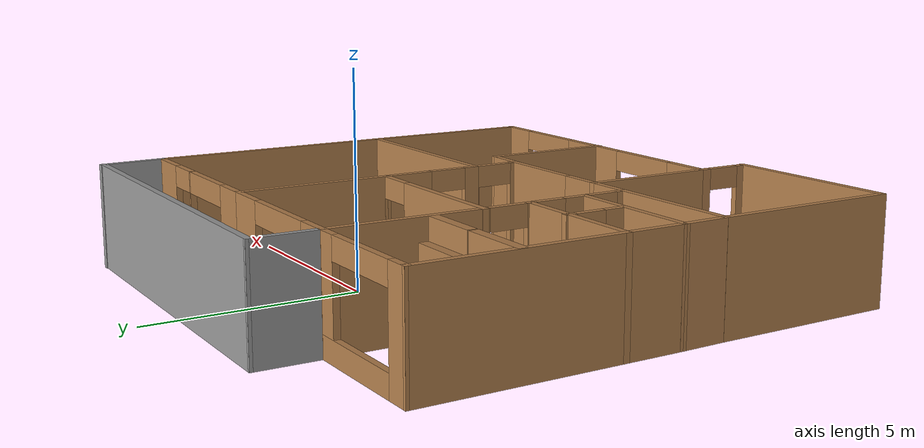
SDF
<?xml version='1.0'?>
<sdf version='1.7'>
  <model name='company_building'>
    <pose>-0.864954 -2.36193 0 0 -0 0</pose>
    <link name='Stairs_1'>
      <visual name='Stairs_1_Visual_0'>
        <pose>-3.6675 3.53186 0.25 0 -0 0</pose>
        <geometry>
          <box>
            <size>1.4781 0.226452 0.5</size>
          </box>
        </geometry>
        <material>
          <script>
            <uri>file://media/materials/scripts/gazebo.material</uri>
            <name>Gazebo/Wood</name>
          </script>
          <ambient>1 1 1 1</ambient>
        </material>
        <meta>
          <layer>0</layer>
        </meta>
      </visual>
      <collision name='Stairs_1_Collision_0'>
        <geometry>
          <box>
            <size>1.4781 0.226452 0.5</size>
          </box>
        </geometry>
        <pose>-3.6675 3.53186 0.25 0 -0 0</pose>
      </collision>
      <visual name='Stairs_1_Visual_1'>
        <pose>-3.6675 3.3054 0.75 0 -0 0</pose>
        <geometry>
          <box>
            <size>1.4781 0.226452 0.5</size>
          </box>
        </geometry>
        <material>
          <script>
            <uri>file://media/materials/scripts/gazebo.material</uri>
            <name>Gazebo/Wood</name>
          </script>
          <ambient>1 1 1 1</ambient>
        </material>
        <meta>
          <layer>0</layer>
        </meta>
      </visual>
      <collision name='Stairs_1_Collision_1'>
        <geometry>
          <box>
            <size>1.4781 0.226452 0.5</size>
          </box>
        </geometry>
        <pose>-3.6675 3.3054 0.75 0 -0 0</pose>
      </collision>
      <visual name='Stairs_1_Visual_2'>
        <pose>-3.6675 3.07895 1.25 0 -0 0</pose>
        <geometry>
          <box>
            <size>1.4781 0.226452 0.5</size>
          </box>
        </geometry>
        <material>
          <script>
            <uri>file://media/materials/scripts/gazebo.material</uri>
            <name>Gazebo/Wood</name>
          </script>
          <ambient>1 1 1 1</ambient>
        </material>
        <meta>
          <layer>0</layer>
        </meta>
      </visual>
      <collision name='Stairs_1_Collision_2'>
        <geometry>
          <box>
            <size>1.4781 0.226452 0.5</size>
          </box>
        </geometry>
        <pose>-3.6675 3.07895 1.25 0 -0 0</pose>
      </collision>
      <visual name='Stairs_1_Visual_3'>
        <pose>-3.6675 2.8525 1.75 0 -0 0</pose>
        <geometry>
          <box>
            <size>1.4781 0.226452 0.5</size>
          </box>
        </geometry>
        <material>
          <script>
            <uri>file://media/materials/scripts/gazebo.material</uri>
            <name>Gazebo/Wood</name>
          </script>
          <ambient>1 1 1 1</ambient>
        </material>
        <meta>
          <layer>0</layer>
        </meta>
      </visual>
      <collision name='Stairs_1_Collision_3'>
        <geometry>
          <box>
            <size>1.4781 0.226452 0.5</size>
          </box>
        </geometry>
        <pose>-3.6675 2.8525 1.75 0 -0 0</pose>
      </collision>
      <visual name='Stairs_1_Visual_4'>
        <pose>-3.6675 2.62605 2.25 0 -0 0</pose>
        <geometry>
          <box>
            <size>1.4781 0.226452 0.5</size>
          </box>
        </geometry>
        <material>
          <script>
            <uri>file://media/materials/scripts/gazebo.material</uri>
            <name>Gazebo/Wood</name>
          </script>
          <ambient>1 1 1 1</ambient>
        </material>
        <meta>
          <layer>0</layer>
        </meta>
      </visual>
      <collision name='Stairs_1_Collision_4'>
        <geometry>
          <box>
            <size>1.4781 0.226452 0.5</size>
          </box>
        </geometry>
        <pose>-3.6675 2.62605 2.25 0 -0 0</pose>
      </collision>
    </link>
    <link name='Stairs_3'>
      <visual name='Stairs_3_Visual_0'>
        <pose>-5.27264 3.53167 0.25 0 -0 0</pose>
        <geometry>
          <box>
            <size>1.63747 0.226452 0.5</size>
          </box>
        </geometry>
        <material>
          <script>
            <uri>file://media/materials/scripts/gazebo.material</uri>
            <name>Gazebo/Wood</name>
          </script>
          <ambient>1 1 1 1</ambient>
        </material>
        <meta>
          <layer>0</layer>
        </meta>
      </visual>
      <collision name='Stairs_3_Collision_0'>
        <geometry>
          <box>
            <size>1.63747 0.226452 0.5</size>
          </box>
        </geometry>
        <pose>-5.27264 3.53167 0.25 0 -0 0</pose>
      </collision>
      <visual name='Stairs_3_Visual_1'>
        <pose>-5.27264 3.30522 0.75 0 -0 0</pose>
        <geometry>
          <box>
            <size>1.63747 0.226452 0.5</size>
          </box>
        </geometry>
        <material>
          <script>
            <uri>file://media/materials/scripts/gazebo.material</uri>
            <name>Gazebo/Wood</name>
          </script>
          <ambient>1 1 1 1</ambient>
        </material>
        <meta>
          <layer>0</layer>
        </meta>
      </visual>
      <collision name='Stairs_3_Collision_1'>
        <geometry>
          <box>
            <size>1.63747 0.226452 0.5</size>
          </box>
        </geometry>
        <pose>-5.27264 3.30522 0.75 0 -0 0</pose>
      </collision>
      <visual name='Stairs_3_Visual_2'>
        <pose>-5.27264 3.07876 1.25 0 -0 0</pose>
        <geometry>
          <box>
            <size>1.63747 0.226452 0.5</size>
          </box>
        </geometry>
        <material>
          <script>
            <uri>file://media/materials/scripts/gazebo.material</uri>
            <name>Gazebo/Wood</name>
          </script>
          <ambient>1 1 1 1</ambient>
        </material>
        <meta>
          <layer>0</layer>
        </meta>
      </visual>
      <collision name='Stairs_3_Collision_2'>
        <geometry>
          <box>
            <size>1.63747 0.226452 0.5</size>
          </box>
        </geometry>
        <pose>-5.27264 3.07876 1.25 0 -0 0</pose>
      </collision>
      <visual name='Stairs_3_Visual_3'>
        <pose>-5.27264 2.85231 1.75 0 -0 0</pose>
        <geometry>
          <box>
            <size>1.63747 0.226452 0.5</size>
          </box>
        </geometry>
        <material>
          <script>
            <uri>file://media/materials/scripts/gazebo.material</uri>
            <name>Gazebo/Wood</name>
          </script>
          <ambient>1 1 1 1</ambient>
        </material>
        <meta>
          <layer>0</layer>
        </meta>
      </visual>
      <collision name='Stairs_3_Collision_3'>
        <geometry>
          <box>
            <size>1.63747 0.226452 0.5</size>
          </box>
        </geometry>
        <pose>-5.27264 2.85231 1.75 0 -0 0</pose>
      </collision>
      <visual name='Stairs_3_Visual_4'>
        <pose>-5.27264 2.62586 2.25 0 -0 0</pose>
        <geometry>
          <box>
            <size>1.63747 0.226452 0.5</size>
          </box>
        </geometry>
        <material>
          <script>
            <uri>file://media/materials/scripts/gazebo.material</uri>
            <name>Gazebo/Wood</name>
          </script>
          <ambient>1 1 1 1</ambient>
        </material>
        <meta>
          <layer>0</layer>
        </meta>
      </visual>
      <collision name='Stairs_3_Collision_4'>
        <geometry>
          <box>
            <size>1.63747 0.226452 0.5</size>
          </box>
        </geometry>
        <pose>-5.27264 2.62586 2.25 0 -0 0</pose>
      </collision>
    </link>
    <link name='Wall_0'>
      <pose>-0.886305 1.44202 0 0 -0 3.14159</pose>
      <visual name='Wall_0_Visual_0'>
        <pose>-2.06937 0 1.25 0 -0 0</pose>
        <geometry>
          <box>
            <size>0.111259 0.15 2.5</size>
          </box>
        </geometry>
        <material>
          <script>
            <uri>file://media/materials/scripts/gazebo.material</uri>
            <name>Gazebo/Wood</name>
          </script>
          <ambient>1 1 1 1</ambient>
        </material>
        <meta>
          <layer>0</layer>
        </meta>
      </visual>
      <collision name='Wall_0_Collision_0'>
        <geometry>
          <box>
            <size>0.111259 0.15 2.5</size>
          </box>
        </geometry>
        <pose>-2.06937 0 1.25 0 -0 0</pose>
      </collision>
      <visual name='Wall_0_Visual_1'>
        <pose>0.50563 0 1.25 0 -0 0</pose>
        <geometry>
          <box>
            <size>3.23874 0.15 2.5</size>
          </box>
        </geometry>
        <material>
          <script>
            <uri>file://media/materials/scripts/gazebo.material</uri>
            <name>Gazebo/Wood</name>
          </script>
          <ambient>1 1 1 1</ambient>
        </material>
        <meta>
          <layer>0</layer>
        </meta>
      </visual>
      <collision name='Wall_0_Collision_1'>
        <geometry>
          <box>
            <size>3.23874 0.15 2.5</size>
          </box>
        </geometry>
        <pose>0.50563 0 1.25 0 -0 0</pose>
      </collision>
      <visual name='Wall_0_Visual_2'>
        <pose>-1.56374 0 2.25 0 -0 0</pose>
        <geometry>
          <box>
            <size>0.9 0.15 0.5</size>
          </box>
        </geometry>
        <material>
          <script>
            <uri>file://media/materials/scripts/gazebo.material</uri>
            <name>Gazebo/Wood</name>
          </script>
          <ambient>1 1 1 1</ambient>
        </material>
        <meta>
          <layer>0</layer>
        </meta>
      </visual>
      <collision name='Wall_0_Collision_2'>
        <geometry>
          <box>
            <size>0.9 0.15 0.5</size>
          </box>
        </geometry>
        <pose>-1.56374 0 2.25 0 -0 0</pose>
      </collision>
    </link>
    <link name='Wall_1'>
      <pose>-2.91354 -0.309908 0 0 -0 -1.5708</pose>
      <visual name='Wall_1_Visual_0'>
        <pose>-1.73369 0 1.25 0 -0 0</pose>
        <geometry>
          <box>
            <size>0.186554 0.15 2.5</size>
          </box>
        </geometry>
        <material>
          <script>
            <uri>file://media/materials/scripts/gazebo.material</uri>
            <name>Gazebo/Wood</name>
          </script>
          <ambient>1 1 1 1</ambient>
        </material>
        <meta>
          <layer>0</layer>
        </meta>
      </visual>
      <collision name='Wall_1_Collision_0'>
        <geometry>
          <box>
            <size>0.186554 0.15 2.5</size>
          </box>
        </geometry>
        <pose>-1.73369 0 1.25 0 -0 0</pose>
      </collision>
      <visual name='Wall_1_Visual_1'>
        <pose>-0.623201 0 1.25 0 -0 0</pose>
        <geometry>
          <box>
            <size>0.234426 0.15 2.5</size>
          </box>
        </geometry>
        <material>
          <script>
            <uri>file://media/materials/scripts/gazebo.material</uri>
            <name>Gazebo/Wood</name>
          </script>
          <ambient>1 1 1 1</ambient>
        </material>
        <meta>
          <layer>0</layer>
        </meta>
      </visual>
      <collision name='Wall_1_Collision_1'>
        <geometry>
          <box>
            <size>0.234426 0.15 2.5</size>
          </box>
        </geometry>
        <pose>-0.623201 0 1.25 0 -0 0</pose>
      </collision>
      <visual name='Wall_1_Visual_2'>
        <pose>0.51563 0 1.25 0 -0 0</pose>
        <geometry>
          <box>
            <size>0.643236 0.15 2.5</size>
          </box>
        </geometry>
        <material>
          <script>
            <uri>file://media/materials/scripts/gazebo.material</uri>
            <name>Gazebo/Wood</name>
          </script>
          <ambient>1 1 1 1</ambient>
        </material>
        <meta>
          <layer>0</layer>
        </meta>
      </visual>
      <collision name='Wall_1_Collision_2'>
        <geometry>
          <box>
            <size>0.643236 0.15 2.5</size>
          </box>
        </geometry>
        <pose>0.51563 0 1.25 0 -0 0</pose>
      </collision>
      <visual name='Wall_1_Visual_3'>
        <pose>1.68211 0 1.25 0 -0 0</pose>
        <geometry>
          <box>
            <size>0.28972 0.15 2.5</size>
          </box>
        </geometry>
        <material>
          <script>
            <uri>file://media/materials/scripts/gazebo.material</uri>
            <name>Gazebo/Wood</name>
          </script>
          <ambient>1 1 1 1</ambient>
        </material>
        <meta>
          <layer>0</layer>
        </meta>
      </visual>
      <collision name='Wall_1_Collision_3'>
        <geometry>
          <box>
            <size>0.28972 0.15 2.5</size>
          </box>
        </geometry>
        <pose>1.68211 0 1.25 0 -0 0</pose>
      </collision>
      <visual name='Wall_1_Visual_4'>
        <pose>-1.19041 0 2.25 0 -0 0</pose>
        <geometry>
          <box>
            <size>0.9 0.15 0.5</size>
          </box>
        </geometry>
        <material>
          <script>
            <uri>file://media/materials/scripts/gazebo.material</uri>
            <name>Gazebo/Wood</name>
          </script>
          <ambient>1 1 1 1</ambient>
        </material>
        <meta>
          <layer>0</layer>
        </meta>
      </visual>
      <collision name='Wall_1_Collision_4'>
        <geometry>
          <box>
            <size>0.9 0.15 0.5</size>
          </box>
        </geometry>
        <pose>-1.19041 0 2.25 0 -0 0</pose>
      </collision>
      <visual name='Wall_1_Visual_5'>
        <pose>-0.155988 0 2.25 0 -0 0</pose>
        <geometry>
          <box>
            <size>0.7 0.15 0.5</size>
          </box>
        </geometry>
        <material>
          <script>
            <uri>file://media/materials/scripts/gazebo.material</uri>
            <name>Gazebo/Wood</name>
          </script>
          <ambient>1 1 1 1</ambient>
        </material>
        <meta>
          <layer>0</layer>
        </meta>
      </visual>
      <collision name='Wall_1_Collision_5'>
        <geometry>
          <box>
            <size>0.7 0.15 0.5</size>
          </box>
        </geometry>
        <pose>-0.155988 0 2.25 0 -0 0</pose>
      </collision>
      <visual name='Wall_1_Visual_6'>
        <pose>1.18725 0 2.25 0 -0 0</pose>
        <geometry>
          <box>
            <size>0.7 0.15 0.5</size>
          </box>
        </geometry>
        <material>
          <script>
            <uri>file://media/materials/scripts/gazebo.material</uri>
            <name>Gazebo/Wood</name>
          </script>
          <ambient>1 1 1 1</ambient>
        </material>
        <meta>
          <layer>0</layer>
        </meta>
      </visual>
      <collision name='Wall_1_Collision_6'>
        <geometry>
          <box>
            <size>0.7 0.15 0.5</size>
          </box>
        </geometry>
        <pose>1.18725 0 2.25 0 -0 0</pose>
      </collision>
    </link>
    <link name='Wall_100'>
      <collision name='Wall_100_Collision'>
        <geometry>
          <box>
            <size>1.61485 0.15 2.5</size>
          </box>
        </geometry>
        <pose>0 0 1.25 0 -0 0</pose>
      </collision>
      <visual name='Wall_100_Visual'>
        <pose>0 0 1.25 0 -0 0</pose>
        <geometry>
          <box>
            <size>1.61485 0.15 2.5</size>
          </box>
        </geometry>
        <material>
          <script>
            <uri>file://media/materials/scripts/gazebo.material</uri>
            <name>Gazebo/Grey</name>
          </script>
          <ambient>1 1 1 1</ambient>
        </material>
        <meta>
          <layer>0</layer>
        </meta>
      </visual>
      <pose>6.00145 5.70509 0 0 -0 -1.53361</pose>
    </link>
    <link name='Wall_102'>
      <collision name='Wall_102_Collision'>
        <geometry>
          <box>
            <size>1.02263 0.15 2.5</size>
          </box>
        </geometry>
        <pose>0 0 1.25 0 -0 0</pose>
      </collision>
      <visual name='Wall_102_Visual'>
        <pose>0 0 1.25 0 -0 0</pose>
        <geometry>
          <box>
            <size>1.02263 0.15 2.5</size>
          </box>
        </geometry>
        <material>
          <script>
            <uri>file://media/materials/scripts/gazebo.material</uri>
            <name>Gazebo/Wood</name>
          </script>
          <ambient>1 1 1 1</ambient>
        </material>
        <meta>
          <layer>0</layer>
        </meta>
      </visual>
      <pose>1.63712 -2.06339 0 0 -0 -0.026093</pose>
    </link>
    <link name='Wall_103'>
      <collision name='Wall_103_Collision'>
        <geometry>
          <box>
            <size>3.25 0.15 2.5</size>
          </box>
        </geometry>
        <pose>0 0 1.25 0 -0 0</pose>
      </collision>
      <visual name='Wall_103_Visual'>
        <pose>0 0 1.25 0 -0 0</pose>
        <geometry>
          <box>
            <size>3.25 0.15 2.5</size>
          </box>
        </geometry>
        <material>
          <script>
            <uri>file://media/materials/scripts/gazebo.material</uri>
            <name>Gazebo/Wood</name>
          </script>
          <ambient>1 1 1 1</ambient>
        </material>
        <meta>
          <layer>0</layer>
        </meta>
      </visual>
      <pose>2.09605 -3.62478 0 0 -0 -1.5708</pose>
    </link>
    <link name='Wall_2'>
      <pose>-0.856292 -2.04944 0 0 -0 0.006027</pose>
      <visual name='Wall_2_Visual_0'>
        <pose>-2.0768 0 1.25 0 -0 0</pose>
        <geometry>
          <box>
            <size>0.110963 0.15 2.5</size>
          </box>
        </geometry>
        <material>
          <script>
            <uri>file://media/materials/scripts/gazebo.material</uri>
            <name>Gazebo/Wood</name>
          </script>
          <ambient>1 1 1 1</ambient>
        </material>
        <meta>
          <layer>0</layer>
        </meta>
      </visual>
      <collision name='Wall_2_Collision_0'>
        <geometry>
          <box>
            <size>0.110963 0.15 2.5</size>
          </box>
        </geometry>
        <pose>-2.0768 0 1.25 0 -0 0</pose>
      </collision>
      <visual name='Wall_2_Visual_1'>
        <pose>-1.04874 0 1.25 0 -0 0</pose>
        <geometry>
          <box>
            <size>0.145167 0.15 2.5</size>
          </box>
        </geometry>
        <material>
          <script>
            <uri>file://media/materials/scripts/gazebo.material</uri>
            <name>Gazebo/Wood</name>
          </script>
          <ambient>1 1 1 1</ambient>
        </material>
        <meta>
          <layer>0</layer>
        </meta>
      </visual>
      <collision name='Wall_2_Collision_1'>
        <geometry>
          <box>
            <size>0.145167 0.15 2.5</size>
          </box>
        </geometry>
        <pose>-1.04874 0 1.25 0 -0 0</pose>
      </collision>
      <visual name='Wall_2_Visual_2'>
        <pose>1.02807 0 1.25 0 -0 0</pose>
        <geometry>
          <box>
            <size>2.20844 0.15 2.5</size>
          </box>
        </geometry>
        <material>
          <script>
            <uri>file://media/materials/scripts/gazebo.material</uri>
            <name>Gazebo/Wood</name>
          </script>
          <ambient>1 1 1 1</ambient>
        </material>
        <meta>
          <layer>0</layer>
        </meta>
      </visual>
      <collision name='Wall_2_Collision_2'>
        <geometry>
          <box>
            <size>2.20844 0.15 2.5</size>
          </box>
        </geometry>
        <pose>1.02807 0 1.25 0 -0 0</pose>
      </collision>
      <visual name='Wall_2_Visual_3'>
        <pose>-1.57132 0 2.25 0 -0 0</pose>
        <geometry>
          <box>
            <size>0.9 0.15 0.5</size>
          </box>
        </geometry>
        <material>
          <script>
            <uri>file://media/materials/scripts/gazebo.material</uri>
            <name>Gazebo/Wood</name>
          </script>
          <ambient>1 1 1 1</ambient>
        </material>
        <meta>
          <layer>0</layer>
        </meta>
      </visual>
      <collision name='Wall_2_Collision_3'>
        <geometry>
          <box>
            <size>0.9 0.15 0.5</size>
          </box>
        </geometry>
        <pose>-1.57132 0 2.25 0 -0 0</pose>
      </collision>
      <visual name='Wall_2_Visual_4'>
        <pose>-0.526154 0 2.25 0 -0 0</pose>
        <geometry>
          <box>
            <size>0.9 0.15 0.5</size>
          </box>
        </geometry>
        <material>
          <script>
            <uri>file://media/materials/scripts/gazebo.material</uri>
            <name>Gazebo/Wood</name>
          </script>
          <ambient>1 1 1 1</ambient>
        </material>
        <meta>
          <layer>0</layer>
        </meta>
      </visual>
      <collision name='Wall_2_Collision_4'>
        <geometry>
          <box>
            <size>0.9 0.15 0.5</size>
          </box>
        </geometry>
        <pose>-0.526154 0 2.25 0 -0 0</pose>
      </collision>
    </link>
    <link name='Wall_3'>
      <pose>1.19371 -0.304994 0 0 -0 1.57494</pose>
      <visual name='Wall_3_Visual_0'>
        <pose>-1.68683 0 1.25 0 -0 0</pose>
        <geometry>
          <box>
            <size>0.270578 0.15 2.5</size>
          </box>
        </geometry>
        <material>
          <script>
            <uri>file://media/materials/scripts/gazebo.material</uri>
            <name>Gazebo/Wood</name>
          </script>
          <ambient>1 1 1 1</ambient>
        </material>
        <meta>
          <layer>0</layer>
        </meta>
      </visual>
      <collision name='Wall_3_Collision_0'>
        <geometry>
          <box>
            <size>0.270578 0.15 2.5</size>
          </box>
        </geometry>
        <pose>-1.68683 0 1.25 0 -0 0</pose>
      </collision>
      <visual name='Wall_3_Visual_1'>
        <pose>-0.471659 0 1.25 0 -0 0</pose>
        <geometry>
          <box>
            <size>0.359757 0.15 2.5</size>
          </box>
        </geometry>
        <material>
          <script>
            <uri>file://media/materials/scripts/gazebo.material</uri>
            <name>Gazebo/Wood</name>
          </script>
          <ambient>1 1 1 1</ambient>
        </material>
        <meta>
          <layer>0</layer>
        </meta>
      </visual>
      <collision name='Wall_3_Collision_1'>
        <geometry>
          <box>
            <size>0.359757 0.15 2.5</size>
          </box>
        </geometry>
        <pose>-0.471659 0 1.25 0 -0 0</pose>
      </collision>
      <visual name='Wall_3_Visual_2'>
        <pose>1.21517 0 1.25 0 -0 0</pose>
        <geometry>
          <box>
            <size>1.2139 0.15 2.5</size>
          </box>
        </geometry>
        <material>
          <script>
            <uri>file://media/materials/scripts/gazebo.material</uri>
            <name>Gazebo/Wood</name>
          </script>
          <ambient>1 1 1 1</ambient>
        </material>
        <meta>
          <layer>0</layer>
        </meta>
      </visual>
      <collision name='Wall_3_Collision_2'>
        <geometry>
          <box>
            <size>1.2139 0.15 2.5</size>
          </box>
        </geometry>
        <pose>1.21517 0 1.25 0 -0 0</pose>
      </collision>
      <visual name='Wall_3_Visual_3'>
        <pose>-1.10154 0 2.25 0 -0 0</pose>
        <geometry>
          <box>
            <size>0.9 0.15 0.5</size>
          </box>
        </geometry>
        <material>
          <script>
            <uri>file://media/materials/scripts/gazebo.material</uri>
            <name>Gazebo/Wood</name>
          </script>
          <ambient>1 1 1 1</ambient>
        </material>
        <meta>
          <layer>0</layer>
        </meta>
      </visual>
      <collision name='Wall_3_Collision_3'>
        <geometry>
          <box>
            <size>0.9 0.15 0.5</size>
          </box>
        </geometry>
        <pose>-1.10154 0 2.25 0 -0 0</pose>
      </collision>
      <visual name='Wall_3_Visual_4'>
        <pose>0.158219 0 2.25 0 -0 0</pose>
        <geometry>
          <box>
            <size>0.9 0.15 0.5</size>
          </box>
        </geometry>
        <material>
          <script>
            <uri>file://media/materials/scripts/gazebo.material</uri>
            <name>Gazebo/Wood</name>
          </script>
          <ambient>1 1 1 1</ambient>
        </material>
        <meta>
          <layer>0</layer>
        </meta>
      </visual>
      <collision name='Wall_3_Collision_4'>
        <geometry>
          <box>
            <size>0.9 0.15 0.5</size>
          </box>
        </geometry>
        <pose>0.158219 0 2.25 0 -0 0</pose>
      </collision>
    </link>
    <link name='Wall_35'>
      <pose>0.144954 -5.14827 0 0 -0 3.14159</pose>
      <visual name='Wall_35_Visual_0'>
        <pose>-1.57716 0 1.25 0 -0 0</pose>
        <geometry>
          <box>
            <size>1.09568 0.15 2.5</size>
          </box>
        </geometry>
        <material>
          <script>
            <uri>file://media/materials/scripts/gazebo.material</uri>
            <name>Gazebo/Wood</name>
          </script>
          <ambient>1 1 1 1</ambient>
        </material>
        <meta>
          <layer>0</layer>
        </meta>
      </visual>
      <collision name='Wall_35_Collision_0'>
        <geometry>
          <box>
            <size>1.09568 0.15 2.5</size>
          </box>
        </geometry>
        <pose>-1.57716 0 1.25 0 -0 0</pose>
      </collision>
      <visual name='Wall_35_Visual_1'>
        <pose>0.54784 0 0.25 0 -0 0</pose>
        <geometry>
          <box>
            <size>3.15432 0.15 0.5</size>
          </box>
        </geometry>
        <material>
          <script>
            <uri>file://media/materials/scripts/gazebo.material</uri>
            <name>Gazebo/Wood</name>
          </script>
          <ambient>1 1 1 1</ambient>
        </material>
        <meta>
          <layer>0</layer>
        </meta>
      </visual>
      <collision name='Wall_35_Collision_1'>
        <geometry>
          <box>
            <size>3.15432 0.15 0.5</size>
          </box>
        </geometry>
        <pose>0.54784 0 0.25 0 -0 0</pose>
      </collision>
      <visual name='Wall_35_Visual_2'>
        <pose>1.51572 0 1.5 0 -0 0</pose>
        <geometry>
          <box>
            <size>1.21855 0.15 2</size>
          </box>
        </geometry>
        <material>
          <script>
            <uri>file://media/materials/scripts/gazebo.material</uri>
            <name>Gazebo/Wood</name>
          </script>
          <ambient>1 1 1 1</ambient>
        </material>
        <meta>
          <layer>0</layer>
        </meta>
      </visual>
      <collision name='Wall_35_Collision_2'>
        <geometry>
          <box>
            <size>1.21855 0.15 2</size>
          </box>
        </geometry>
        <pose>1.51572 0 1.5 0 -0 0</pose>
      </collision>
      <visual name='Wall_35_Visual_3'>
        <pose>-0.061435 0 2.25 0 -0 0</pose>
        <geometry>
          <box>
            <size>1.93577 0.15 0.5</size>
          </box>
        </geometry>
        <material>
          <script>
            <uri>file://media/materials/scripts/gazebo.material</uri>
            <name>Gazebo/Wood</name>
          </script>
          <ambient>1 1 1 1</ambient>
        </material>
        <meta>
          <layer>0</layer>
        </meta>
      </visual>
      <collision name='Wall_35_Collision_3'>
        <geometry>
          <box>
            <size>1.93577 0.15 0.5</size>
          </box>
        </geometry>
        <pose>-0.061435 0 2.25 0 -0 0</pose>
      </collision>
    </link>
    <link name='Wall_36'>
      <collision name='Wall_36_Collision'>
        <geometry>
          <box>
            <size>3.21041 0.15 2.5</size>
          </box>
        </geometry>
        <pose>0 0 1.25 0 -0 0</pose>
      </collision>
      <visual name='Wall_36_Visual'>
        <pose>0 0 1.25 0 -0 0</pose>
        <geometry>
          <box>
            <size>3.21041 0.15 2.5</size>
          </box>
        </geometry>
        <material>
          <script>
            <uri>file://media/materials/scripts/gazebo.material</uri>
            <name>Gazebo/Wood</name>
          </script>
          <ambient>1 1 1 1</ambient>
        </material>
        <meta>
          <layer>0</layer>
        </meta>
      </visual>
      <pose>-1.90505 -3.59828 0 0 -0 1.5708</pose>
    </link>
    <link name='Wall_38'>
      <collision name='Wall_38_Collision'>
        <geometry>
          <box>
            <size>3.24754 0.15 2.5</size>
          </box>
        </geometry>
        <pose>0 0 1.25 0 -0 0</pose>
      </collision>
      <visual name='Wall_38_Visual'>
        <pose>0 0 1.25 0 -0 0</pose>
        <geometry>
          <box>
            <size>3.24754 0.15 2.5</size>
          </box>
        </geometry>
        <material>
          <script>
            <uri>file://media/materials/scripts/gazebo.material</uri>
            <name>Gazebo/Wood</name>
          </script>
          <ambient>1 1 1 1</ambient>
        </material>
        <meta>
          <layer>0</layer>
        </meta>
      </visual>
      <pose>-4.48205 -2.07561 0 0 -0 -3.1327</pose>
    </link>
    <link name='Wall_43'>
      <collision name='Wall_43_Collision'>
        <geometry>
          <box>
            <size>4.5 0.15 2.5</size>
          </box>
        </geometry>
        <pose>0 0 1.25 0 -0 0</pose>
      </collision>
      <visual name='Wall_43_Visual'>
        <pose>0 0 1.25 0 -0 0</pose>
        <geometry>
          <box>
            <size>4.5 0.15 2.5</size>
          </box>
        </geometry>
        <material>
          <script>
            <uri>file://media/materials/scripts/gazebo.material</uri>
            <name>Gazebo/Wood</name>
          </script>
          <ambient>1 1 1 1</ambient>
        </material>
        <meta>
          <layer>0</layer>
        </meta>
      </visual>
      <pose>-6.03075 -4.26438 0 0 -0 -1.5708</pose>
    </link>
    <link name='Wall_44'>
      <collision name='Wall_44_Collision'>
        <geometry>
          <box>
            <size>4.25005 0.15 2.5</size>
          </box>
        </geometry>
        <pose>0 0 1.25 0 -0 0</pose>
      </collision>
      <visual name='Wall_44_Visual'>
        <pose>0 0 1.25 0 -0 0</pose>
        <geometry>
          <box>
            <size>4.25005 0.15 2.5</size>
          </box>
        </geometry>
        <material>
          <script>
            <uri>file://media/materials/scripts/gazebo.material</uri>
            <name>Gazebo/Wood</name>
          </script>
          <ambient>1 1 1 1</ambient>
        </material>
        <meta>
          <layer>0</layer>
        </meta>
      </visual>
      <pose>-3.96096 -6.42948 0 0 -0 0.004829</pose>
    </link>
    <link name='Wall_45'>
      <pose>-1.9179 -5.77403 0 0 -0 1.55089</pose>
      <visual name='Wall_45_Visual_0'>
        <pose>-0.549991 0 1.25 0 -0 0</pose>
        <geometry>
          <box>
            <size>0.341381 0.15 2.5</size>
          </box>
        </geometry>
        <material>
          <script>
            <uri>file://media/materials/scripts/gazebo.material</uri>
            <name>Gazebo/Wood</name>
          </script>
          <ambient>1 1 1 1</ambient>
        </material>
        <meta>
          <layer>0</layer>
        </meta>
      </visual>
      <collision name='Wall_45_Collision_0'>
        <geometry>
          <box>
            <size>0.341381 0.15 2.5</size>
          </box>
        </geometry>
        <pose>-0.549991 0 1.25 0 -0 0</pose>
      </collision>
      <visual name='Wall_45_Visual_1'>
        <pose>0.17069 0 0.25 0 -0 0</pose>
        <geometry>
          <box>
            <size>1.09998 0.15 0.5</size>
          </box>
        </geometry>
        <material>
          <script>
            <uri>file://media/materials/scripts/gazebo.material</uri>
            <name>Gazebo/Wood</name>
          </script>
          <ambient>1 1 1 1</ambient>
        </material>
        <meta>
          <layer>0</layer>
        </meta>
      </visual>
      <collision name='Wall_45_Collision_1'>
        <geometry>
          <box>
            <size>1.09998 0.15 0.5</size>
          </box>
        </geometry>
        <pose>0.17069 0 0.25 0 -0 0</pose>
      </collision>
      <visual name='Wall_45_Visual_2'>
        <pose>0.57069 0 1.5 0 -0 0</pose>
        <geometry>
          <box>
            <size>0.299983 0.15 2</size>
          </box>
        </geometry>
        <material>
          <script>
            <uri>file://media/materials/scripts/gazebo.material</uri>
            <name>Gazebo/Wood</name>
          </script>
          <ambient>1 1 1 1</ambient>
        </material>
        <meta>
          <layer>0</layer>
        </meta>
      </visual>
      <collision name='Wall_45_Collision_2'>
        <geometry>
          <box>
            <size>0.299983 0.15 2</size>
          </box>
        </geometry>
        <pose>0.57069 0 1.5 0 -0 0</pose>
      </collision>
      <visual name='Wall_45_Visual_3'>
        <pose>0.020699 0 2.25 0 -0 0</pose>
        <geometry>
          <box>
            <size>0.8 0.15 0.5</size>
          </box>
        </geometry>
        <material>
          <script>
            <uri>file://media/materials/scripts/gazebo.material</uri>
            <name>Gazebo/Wood</name>
          </script>
          <ambient>1 1 1 1</ambient>
        </material>
        <meta>
          <layer>0</layer>
        </meta>
      </visual>
      <collision name='Wall_45_Collision_3'>
        <geometry>
          <box>
            <size>0.8 0.15 0.5</size>
          </box>
        </geometry>
        <pose>0.020699 0 2.25 0 -0 0</pose>
      </collision>
    </link>
    <link name='Wall_52'>
      <collision name='Wall_52_Collision'>
        <geometry>
          <box>
            <size>3.63581 0.15 2.5</size>
          </box>
        </geometry>
        <pose>0 0 1.25 0 -0 0</pose>
      </collision>
      <visual name='Wall_52_Visual'>
        <pose>0 0 1.25 0 -0 0</pose>
        <geometry>
          <box>
            <size>3.63581 0.15 2.5</size>
          </box>
        </geometry>
        <material>
          <script>
            <uri>file://media/materials/scripts/gazebo.material</uri>
            <name>Gazebo/Wood</name>
          </script>
          <ambient>1 1 1 1</ambient>
        </material>
        <meta>
          <layer>0</layer>
        </meta>
      </visual>
      <pose>1.18646 3.18489 0 0 -0 -1.5708</pose>
    </link>
    <link name='Wall_55'>
      <collision name='Wall_55_Collision'>
        <geometry>
          <box>
            <size>5 0.15 2.5</size>
          </box>
        </geometry>
        <pose>0 0 1.25 0 -0 0</pose>
      </collision>
      <visual name='Wall_55_Visual'>
        <pose>0 0 1.25 0 -0 0</pose>
        <geometry>
          <box>
            <size>5 0.15 2.5</size>
          </box>
        </geometry>
        <material>
          <script>
            <uri>file://media/materials/scripts/gazebo.material</uri>
            <name>Gazebo/Wood</name>
          </script>
          <ambient>1 1 1 1</ambient>
        </material>
        <meta>
          <layer>0</layer>
        </meta>
      </visual>
      <pose>3.62645 -0.899594 0 0 -0 0</pose>
    </link>
    <link name='Wall_57'>
      <collision name='Wall_57_Collision'>
        <geometry>
          <box>
            <size>6.02294 0.15 2.5</size>
          </box>
        </geometry>
        <pose>0 0 1.25 0 -0 0</pose>
      </collision>
      <visual name='Wall_57_Visual'>
        <pose>0 0 1.25 0 -0 0</pose>
        <geometry>
          <box>
            <size>6.02294 0.15 2.5</size>
          </box>
        </geometry>
        <material>
          <script>
            <uri>file://media/materials/scripts/gazebo.material</uri>
            <name>Gazebo/Wood</name>
          </script>
          <ambient>1 1 1 1</ambient>
        </material>
        <meta>
          <layer>0</layer>
        </meta>
      </visual>
      <pose>6.04007 2.03679 0 0 -0 1.57467</pose>
    </link>
    <link name='Wall_58'>
      <pose>3.61507 4.96179 0 0 -0 -3.13688</pose>
      <visual name='Wall_58_Visual_0'>
        <pose>-1.90125 0 1.25 0 -0 0</pose>
        <geometry>
          <box>
            <size>1.1748 0.15 2.5</size>
          </box>
        </geometry>
        <material>
          <script>
            <uri>file://media/materials/scripts/gazebo.material</uri>
            <name>Gazebo/Wood</name>
          </script>
          <ambient>1 1 1 1</ambient>
        </material>
        <meta>
          <layer>0</layer>
        </meta>
      </visual>
      <collision name='Wall_58_Collision_0'>
        <geometry>
          <box>
            <size>1.1748 0.15 2.5</size>
          </box>
        </geometry>
        <pose>-1.90125 0 1.25 0 -0 0</pose>
      </collision>
      <visual name='Wall_58_Visual_1'>
        <pose>-0.386899 0 1.25 0 -0 0</pose>
        <geometry>
          <box>
            <size>0.053898 0.15 2.5</size>
          </box>
        </geometry>
        <material>
          <script>
            <uri>file://media/materials/scripts/gazebo.material</uri>
            <name>Gazebo/Wood</name>
          </script>
          <ambient>1 1 1 1</ambient>
        </material>
        <meta>
          <layer>0</layer>
        </meta>
      </visual>
      <collision name='Wall_58_Collision_1'>
        <geometry>
          <box>
            <size>0.053898 0.15 2.5</size>
          </box>
        </geometry>
        <pose>-0.386899 0 1.25 0 -0 0</pose>
      </collision>
      <visual name='Wall_58_Visual_2'>
        <pose>1.06435 0 0.25 0 -0 0</pose>
        <geometry>
          <box>
            <size>2.84859 0.15 0.5</size>
          </box>
        </geometry>
        <material>
          <script>
            <uri>file://media/materials/scripts/gazebo.material</uri>
            <name>Gazebo/Wood</name>
          </script>
          <ambient>1 1 1 1</ambient>
        </material>
        <meta>
          <layer>0</layer>
        </meta>
      </visual>
      <collision name='Wall_58_Collision_2'>
        <geometry>
          <box>
            <size>2.84859 0.15 0.5</size>
          </box>
        </geometry>
        <pose>1.06435 0 0.25 0 -0 0</pose>
      </collision>
      <visual name='Wall_58_Visual_3'>
        <pose>1.99936 0 1.5 0 -0 0</pose>
        <geometry>
          <box>
            <size>0.978558 0.15 2</size>
          </box>
        </geometry>
        <material>
          <script>
            <uri>file://media/materials/scripts/gazebo.material</uri>
            <name>Gazebo/Wood</name>
          </script>
          <ambient>1 1 1 1</ambient>
        </material>
        <meta>
          <layer>0</layer>
        </meta>
      </visual>
      <collision name='Wall_58_Collision_3'>
        <geometry>
          <box>
            <size>0.978558 0.15 2</size>
          </box>
        </geometry>
        <pose>1.99936 0 1.5 0 -0 0</pose>
      </collision>
      <visual name='Wall_58_Visual_4'>
        <pose>-0.863848 0 2.25 0 -0 0</pose>
        <geometry>
          <box>
            <size>0.9 0.15 0.5</size>
          </box>
        </geometry>
        <material>
          <script>
            <uri>file://media/materials/scripts/gazebo.material</uri>
            <name>Gazebo/Wood</name>
          </script>
          <ambient>1 1 1 1</ambient>
        </material>
        <meta>
          <layer>0</layer>
        </meta>
      </visual>
      <collision name='Wall_58_Collision_4'>
        <geometry>
          <box>
            <size>0.9 0.15 0.5</size>
          </box>
        </geometry>
        <pose>-0.863848 0 2.25 0 -0 0</pose>
      </collision>
      <visual name='Wall_58_Visual_5'>
        <pose>0.575067 0 2.25 0 -0 0</pose>
        <geometry>
          <box>
            <size>1.87003 0.15 0.5</size>
          </box>
        </geometry>
        <material>
          <script>
            <uri>file://media/materials/scripts/gazebo.material</uri>
            <name>Gazebo/Wood</name>
          </script>
          <ambient>1 1 1 1</ambient>
        </material>
        <meta>
          <layer>0</layer>
        </meta>
      </visual>
      <collision name='Wall_58_Collision_5'>
        <geometry>
          <box>
            <size>1.87003 0.15 0.5</size>
          </box>
        </geometry>
        <pose>0.575067 0 2.25 0 -0 0</pose>
      </collision>
    </link>
    <link name='Wall_60'>
      <pose>4.11996 -5.14827 0 0 -0 0</pose>
      <visual name='Wall_60_Visual_0'>
        <pose>-1.45027 0 1.25 0 -0 0</pose>
        <geometry>
          <box>
            <size>1.09945 0.15 2.5</size>
          </box>
        </geometry>
        <material>
          <script>
            <uri>file://media/materials/scripts/gazebo.material</uri>
            <name>Gazebo/Wood</name>
          </script>
          <ambient>1 1 1 1</ambient>
        </material>
        <meta>
          <layer>0</layer>
        </meta>
      </visual>
      <collision name='Wall_60_Collision_0'>
        <geometry>
          <box>
            <size>1.09945 0.15 2.5</size>
          </box>
        </geometry>
        <pose>-1.45027 0 1.25 0 -0 0</pose>
      </collision>
      <visual name='Wall_60_Visual_1'>
        <pose>0.549726 0 0.25 0 -0 0</pose>
        <geometry>
          <box>
            <size>2.90055 0.15 0.5</size>
          </box>
        </geometry>
        <material>
          <script>
            <uri>file://media/materials/scripts/gazebo.material</uri>
            <name>Gazebo/Wood</name>
          </script>
          <ambient>1 1 1 1</ambient>
        </material>
        <meta>
          <layer>0</layer>
        </meta>
      </visual>
      <collision name='Wall_60_Collision_1'>
        <geometry>
          <box>
            <size>2.90055 0.15 0.5</size>
          </box>
        </geometry>
        <pose>0.549726 0 0.25 0 -0 0</pose>
      </collision>
      <visual name='Wall_60_Visual_2'>
        <pose>1.48474 0 1.5 0 -0 0</pose>
        <geometry>
          <box>
            <size>1.03051 0.15 2</size>
          </box>
        </geometry>
        <material>
          <script>
            <uri>file://media/materials/scripts/gazebo.material</uri>
            <name>Gazebo/Wood</name>
          </script>
          <ambient>1 1 1 1</ambient>
        </material>
        <meta>
          <layer>0</layer>
        </meta>
      </visual>
      <collision name='Wall_60_Collision_2'>
        <geometry>
          <box>
            <size>1.03051 0.15 2</size>
          </box>
        </geometry>
        <pose>1.48474 0 1.5 0 -0 0</pose>
      </collision>
      <visual name='Wall_60_Visual_3'>
        <pose>0.03447 0 2.25 0 -0 0</pose>
        <geometry>
          <box>
            <size>1.87003 0.15 0.5</size>
          </box>
        </geometry>
        <material>
          <script>
            <uri>file://media/materials/scripts/gazebo.material</uri>
            <name>Gazebo/Wood</name>
          </script>
          <ambient>1 1 1 1</ambient>
        </material>
        <meta>
          <layer>0</layer>
        </meta>
      </visual>
      <collision name='Wall_60_Collision_3'>
        <geometry>
          <box>
            <size>1.87003 0.15 0.5</size>
          </box>
        </geometry>
        <pose>0.03447 0 2.25 0 -0 0</pose>
      </collision>
    </link>
    <link name='Wall_61'>
      <collision name='Wall_61_Collision'>
        <geometry>
          <box>
            <size>4.39869 0.15 2.5</size>
          </box>
        </geometry>
        <pose>0 0 1.25 0 -0 0</pose>
      </collision>
      <visual name='Wall_61_Visual'>
        <pose>0 0 1.25 0 -0 0</pose>
        <geometry>
          <box>
            <size>4.39869 0.15 2.5</size>
          </box>
        </geometry>
        <material>
          <script>
            <uri>file://media/materials/scripts/gazebo.material</uri>
            <name>Gazebo/Wood</name>
          </script>
          <ambient>1 1 1 1</ambient>
        </material>
        <meta>
          <layer>0</layer>
        </meta>
      </visual>
      <pose>6.0482 -3.02393 0 0 -0 1.56927</pose>
    </link>
    <link name='Wall_70'>
      <collision name='Wall_70_Collision'>
        <geometry>
          <box>
            <size>3.25 0.15 2.5</size>
          </box>
        </geometry>
        <pose>0 0 1.25 0 -0 0</pose>
      </collision>
      <visual name='Wall_70_Visual'>
        <pose>0 0 1.25 0 -0 0</pose>
        <geometry>
          <box>
            <size>3.25 0.15 2.5</size>
          </box>
        </geometry>
        <material>
          <script>
            <uri>file://media/materials/scripts/gazebo.material</uri>
            <name>Gazebo/Wood</name>
          </script>
          <ambient>1 1 1 1</ambient>
        </material>
        <meta>
          <layer>0</layer>
        </meta>
      </visual>
      <pose>-4.50035 -1.04182 0 0 -0 3.14159</pose>
    </link>
    <link name='Wall_71'>
      <collision name='Wall_71_Collision'>
        <geometry>
          <box>
            <size>1.19774 0.15 2.5</size>
          </box>
        </geometry>
        <pose>0 0 1.25 0 -0 0</pose>
      </collision>
      <visual name='Wall_71_Visual'>
        <pose>0 0 1.25 0 -0 0</pose>
        <geometry>
          <box>
            <size>1.19774 0.15 2.5</size>
          </box>
        </geometry>
        <material>
          <script>
            <uri>file://media/materials/scripts/gazebo.material</uri>
            <name>Gazebo/Wood</name>
          </script>
          <ambient>1 1 1 1</ambient>
        </material>
        <meta>
          <layer>0</layer>
        </meta>
      </visual>
      <pose>-6.04055 -1.5656 0 0 -0 -1.55209</pose>
    </link>
    <link name='Wall_75'>
      <collision name='Wall_75_Collision'>
        <geometry>
          <box>
            <size>3.25 0.15 2.5</size>
          </box>
        </geometry>
        <pose>0 0 1.25 0 -0 0</pose>
      </collision>
      <visual name='Wall_75_Visual'>
        <pose>0 0 1.25 0 -0 0</pose>
        <geometry>
          <box>
            <size>3.25 0.15 2.5</size>
          </box>
        </geometry>
        <material>
          <script>
            <uri>file://media/materials/scripts/gazebo.material</uri>
            <name>Gazebo/Wood</name>
          </script>
          <ambient>1 1 1 1</ambient>
        </material>
        <meta>
          <layer>0</layer>
        </meta>
      </visual>
      <pose>-4.50035 0.324181 0 0 -0 3.14159</pose>
    </link>
    <link name='Wall_76'>
      <collision name='Wall_76_Collision'>
        <geometry>
          <box>
            <size>1.516 0.15 2.5</size>
          </box>
        </geometry>
        <pose>0 0 1.25 0 -0 0</pose>
      </collision>
      <visual name='Wall_76_Visual'>
        <pose>0 0 1.25 0 -0 0</pose>
        <geometry>
          <box>
            <size>1.516 0.15 2.5</size>
          </box>
        </geometry>
        <material>
          <script>
            <uri>file://media/materials/scripts/gazebo.material</uri>
            <name>Gazebo/Wood</name>
          </script>
          <ambient>1 1 1 1</ambient>
        </material>
        <meta>
          <layer>0</layer>
        </meta>
      </visual>
      <pose>-6.05035 -0.35882 0 0 -0 -1.5708</pose>
    </link>
    <link name='Wall_78'>
      <pose>-4.24805 -0.305286 0 0 -0 -1.5708</pose>
      <visual name='Wall_78_Visual_0'>
        <pose>-0.6143 0 1.25 0 -0 0</pose>
        <geometry>
          <box>
            <size>0.271401 0.15 2.5</size>
          </box>
        </geometry>
        <material>
          <script>
            <uri>file://media/materials/scripts/gazebo.material</uri>
            <name>Gazebo/Wood</name>
          </script>
          <ambient>1 1 1 1</ambient>
        </material>
        <meta>
          <layer>0</layer>
        </meta>
      </visual>
      <collision name='Wall_78_Collision_0'>
        <geometry>
          <box>
            <size>0.271401 0.15 2.5</size>
          </box>
        </geometry>
        <pose>-0.6143 0 1.25 0 -0 0</pose>
      </collision>
      <visual name='Wall_78_Visual_1'>
        <pose>0.4857 0 1.25 0 -0 0</pose>
        <geometry>
          <box>
            <size>0.528599 0.15 2.5</size>
          </box>
        </geometry>
        <material>
          <script>
            <uri>file://media/materials/scripts/gazebo.material</uri>
            <name>Gazebo/Wood</name>
          </script>
          <ambient>1 1 1 1</ambient>
        </material>
        <meta>
          <layer>0</layer>
        </meta>
      </visual>
      <collision name='Wall_78_Collision_1'>
        <geometry>
          <box>
            <size>0.528599 0.15 2.5</size>
          </box>
        </geometry>
        <pose>0.4857 0 1.25 0 -0 0</pose>
      </collision>
      <visual name='Wall_78_Visual_2'>
        <pose>-0.128599 0 2.25 0 -0 0</pose>
        <geometry>
          <box>
            <size>0.7 0.15 0.5</size>
          </box>
        </geometry>
        <material>
          <script>
            <uri>file://media/materials/scripts/gazebo.material</uri>
            <name>Gazebo/Wood</name>
          </script>
          <ambient>1 1 1 1</ambient>
        </material>
        <meta>
          <layer>0</layer>
        </meta>
      </visual>
      <collision name='Wall_78_Collision_2'>
        <geometry>
          <box>
            <size>0.7 0.15 0.5</size>
          </box>
        </geometry>
        <pose>-0.128599 0 2.25 0 -0 0</pose>
      </collision>
    </link>
    <link name='Wall_82'>
      <pose>-0.84855 4.95041 0 0 -0 3.14159</pose>
      <visual name='Wall_82_Visual_0'>
        <pose>-1.5662 0 1.25 0 -0 0</pose>
        <geometry>
          <box>
            <size>1.1176 0.15 2.5</size>
          </box>
        </geometry>
        <material>
          <script>
            <uri>file://media/materials/scripts/gazebo.material</uri>
            <name>Gazebo/Wood</name>
          </script>
          <ambient>1 1 1 1</ambient>
        </material>
        <meta>
          <layer>0</layer>
        </meta>
      </visual>
      <collision name='Wall_82_Collision_0'>
        <geometry>
          <box>
            <size>1.1176 0.15 2.5</size>
          </box>
        </geometry>
        <pose>-1.5662 0 1.25 0 -0 0</pose>
      </collision>
      <visual name='Wall_82_Visual_1'>
        <pose>0.558798 0 0.25 0 -0 0</pose>
        <geometry>
          <box>
            <size>3.1324 0.15 0.5</size>
          </box>
        </geometry>
        <material>
          <script>
            <uri>file://media/materials/scripts/gazebo.material</uri>
            <name>Gazebo/Wood</name>
          </script>
          <ambient>1 1 1 1</ambient>
        </material>
        <meta>
          <layer>0</layer>
        </meta>
      </visual>
      <collision name='Wall_82_Collision_1'>
        <geometry>
          <box>
            <size>3.1324 0.15 0.5</size>
          </box>
        </geometry>
        <pose>0.558798 0 0.25 0 -0 0</pose>
      </collision>
      <visual name='Wall_82_Visual_2'>
        <pose>1.6873 0 1.5 0 -0 0</pose>
        <geometry>
          <box>
            <size>0.875403 0.15 2</size>
          </box>
        </geometry>
        <material>
          <script>
            <uri>file://media/materials/scripts/gazebo.material</uri>
            <name>Gazebo/Wood</name>
          </script>
          <ambient>1 1 1 1</ambient>
        </material>
        <meta>
          <layer>0</layer>
        </meta>
      </visual>
      <collision name='Wall_82_Collision_2'>
        <geometry>
          <box>
            <size>0.875403 0.15 2</size>
          </box>
        </geometry>
        <pose>1.6873 0 1.5 0 -0 0</pose>
      </collision>
      <visual name='Wall_82_Visual_3'>
        <pose>0.121097 0 2.25 0 -0 0</pose>
        <geometry>
          <box>
            <size>2.257 0.15 0.5</size>
          </box>
        </geometry>
        <material>
          <script>
            <uri>file://media/materials/scripts/gazebo.material</uri>
            <name>Gazebo/Wood</name>
          </script>
          <ambient>1 1 1 1</ambient>
        </material>
        <meta>
          <layer>0</layer>
        </meta>
      </visual>
      <collision name='Wall_82_Collision_3'>
        <geometry>
          <box>
            <size>2.257 0.15 0.5</size>
          </box>
        </geometry>
        <pose>0.121097 0 2.25 0 -0 0</pose>
      </collision>
    </link>
    <link name='Wall_83'>
      <collision name='Wall_83_Collision'>
        <geometry>
          <box>
            <size>3.65842 0.15 2.5</size>
          </box>
        </geometry>
        <pose>0 0 1.25 0 -0 0</pose>
      </collision>
      <visual name='Wall_83_Visual'>
        <pose>0 0 1.25 0 -0 0</pose>
        <geometry>
          <box>
            <size>3.65842 0.15 2.5</size>
          </box>
        </geometry>
        <material>
          <script>
            <uri>file://media/materials/scripts/gazebo.material</uri>
            <name>Gazebo/Wood</name>
          </script>
          <ambient>1 1 1 1</ambient>
        </material>
        <meta>
          <layer>0</layer>
        </meta>
      </visual>
      <pose>-2.90604 3.19621 0 0 -0 -1.57507</pose>
    </link>
    <link name='Wall_85'>
      <collision name='Wall_85_Collision'>
        <geometry>
          <box>
            <size>4.75 0.15 2.5</size>
          </box>
        </geometry>
        <pose>0 0 1.25 0 -0 0</pose>
      </collision>
      <visual name='Wall_85_Visual'>
        <pose>0 0 1.25 0 -0 0</pose>
        <geometry>
          <box>
            <size>4.75 0.15 2.5</size>
          </box>
        </geometry>
        <material>
          <script>
            <uri>file://media/materials/scripts/gazebo.material</uri>
            <name>Gazebo/Wood</name>
          </script>
          <ambient>1 1 1 1</ambient>
        </material>
        <meta>
          <layer>0</layer>
        </meta>
      </visual>
      <pose>-6.05035 2.62418 0 0 -0 1.5708</pose>
    </link>
    <link name='Wall_86'>
      <pose>-4.47445 4.93729 0 0 -0 0.008321</pose>
      <visual name='Wall_86_Visual_0'>
        <pose>-1.36247 0 1.25 0 -0 0</pose>
        <geometry>
          <box>
            <size>0.576969 0.15 2.5</size>
          </box>
        </geometry>
        <material>
          <script>
            <uri>file://media/materials/scripts/gazebo.material</uri>
            <name>Gazebo/Wood</name>
          </script>
          <ambient>1 1 1 1</ambient>
        </material>
        <meta>
          <layer>0</layer>
        </meta>
      </visual>
      <collision name='Wall_86_Collision_0'>
        <geometry>
          <box>
            <size>0.576969 0.15 2.5</size>
          </box>
        </geometry>
        <pose>-1.36247 0 1.25 0 -0 0</pose>
      </collision>
      <visual name='Wall_86_Visual_1'>
        <pose>0.288484 0 0.25 0 -0 0</pose>
        <geometry>
          <box>
            <size>2.72494 0.15 0.5</size>
          </box>
        </geometry>
        <material>
          <script>
            <uri>file://media/materials/scripts/gazebo.material</uri>
            <name>Gazebo/Wood</name>
          </script>
          <ambient>1 1 1 1</ambient>
        </material>
        <meta>
          <layer>0</layer>
        </meta>
      </visual>
      <collision name='Wall_86_Collision_1'>
        <geometry>
          <box>
            <size>2.72494 0.15 0.5</size>
          </box>
        </geometry>
        <pose>0.288484 0 0.25 0 -0 0</pose>
      </collision>
      <visual name='Wall_86_Visual_2'>
        <pose>1.34803 0 1.5 0 -0 0</pose>
        <geometry>
          <box>
            <size>0.605843 0.15 2</size>
          </box>
        </geometry>
        <material>
          <script>
            <uri>file://media/materials/scripts/gazebo.material</uri>
            <name>Gazebo/Wood</name>
          </script>
          <ambient>1 1 1 1</ambient>
        </material>
        <meta>
          <layer>0</layer>
        </meta>
      </visual>
      <collision name='Wall_86_Collision_2'>
        <geometry>
          <box>
            <size>0.605843 0.15 2</size>
          </box>
        </geometry>
        <pose>1.34803 0 1.5 0 -0 0</pose>
      </collision>
      <visual name='Wall_86_Visual_3'>
        <pose>-0.014437 0 2.25 0 -0 0</pose>
        <geometry>
          <box>
            <size>2.1191 0.15 0.5</size>
          </box>
        </geometry>
        <material>
          <script>
            <uri>file://media/materials/scripts/gazebo.material</uri>
            <name>Gazebo/Wood</name>
          </script>
          <ambient>1 1 1 1</ambient>
        </material>
        <meta>
          <layer>0</layer>
        </meta>
      </visual>
      <collision name='Wall_86_Collision_3'>
        <geometry>
          <box>
            <size>2.1191 0.15 0.5</size>
          </box>
        </geometry>
        <pose>-0.014437 0 2.25 0 -0 0</pose>
      </collision>
    </link>
    <link name='Wall_92'>
      <collision name='Wall_92_Collision'>
        <geometry>
          <box>
            <size>1.61401 0.15 2.5</size>
          </box>
        </geometry>
        <pose>0 0 1.25 0 -0 0</pose>
      </collision>
      <visual name='Wall_92_Visual'>
        <pose>0 0 1.25 0 -0 0</pose>
        <geometry>
          <box>
            <size>1.61401 0.15 2.5</size>
          </box>
        </geometry>
        <material>
          <script>
            <uri>file://media/materials/scripts/gazebo.material</uri>
            <name>Gazebo/Grey</name>
          </script>
          <ambient>1 1 1 1</ambient>
        </material>
        <meta>
          <layer>0</layer>
        </meta>
      </visual>
      <pose>-2.88717 5.68232 0 0 -0 1.55524</pose>
    </link>
    <link name='Wall_98'>
      <collision name='Wall_98_Collision'>
        <geometry>
          <box>
            <size>9 0.15 2.5</size>
          </box>
        </geometry>
        <pose>0 0 1.25 0 -0 0</pose>
      </collision>
      <visual name='Wall_98_Visual'>
        <pose>0 0 1.25 0 -0 0</pose>
        <geometry>
          <box>
            <size>9 0.15 2.5</size>
          </box>
        </geometry>
        <material>
          <script>
            <uri>file://media/materials/scripts/gazebo.material</uri>
            <name>Gazebo/Grey</name>
          </script>
          <ambient>1 1 1 1</ambient>
        </material>
        <meta>
          <layer>0</layer>
        </meta>
      </visual>
      <pose>1.54922 6.41424 0 0 -0 0</pose>
    </link>
    <static>1</static>
  </model>
</sdf>
